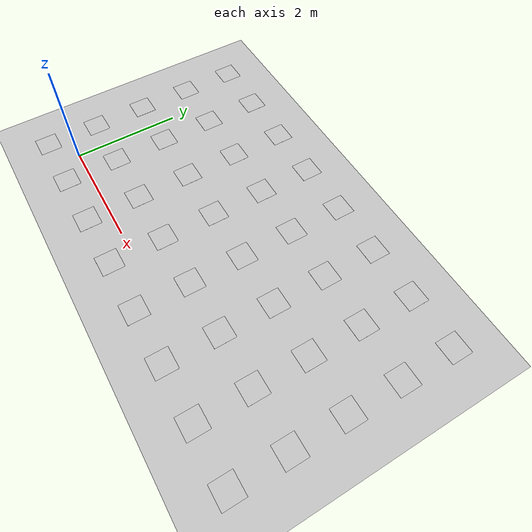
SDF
<sdf version="1.7">
 <world name="default">
  <light name="sun" type="directional">
   <pose>0 0 10 0 -0 0</pose>
   <diffuse>0.8 0.8 0.8 1</diffuse>
   <specular>0.2 0.2 0.2 1</specular>
   <attenuation>
    <range>1000</range>
    <constant>0.9</constant>
    <linear>0.01</linear>
    <quadratic>0.001</quadratic>
   </attenuation>
   <direction>-0.5 0.1 -0.9</direction>
   <spot><inner_angle>0</inner_angle><outer_angle>0</outer_angle><falloff>0</falloff></spot>
  </light>
  <model name="parquet_plane">
   <static>1</static>
   <link name="link">
    <collision name="collision"><geometry><box><size>200 200 0.02</size></box></geometry></collision>
    <visual name="visual">
     <cast_shadows>0</cast_shadows>
     <geometry><box><size>200 200 0.02</size></box></geometry>
     <material>
      <script>
       <uri>model://parquet_plane/materials/scripts</uri>
       <uri>model://parquet_plane/materials/textures</uri>
       <name>parquet</name>
      </script>
     </material>
    </visual>
   </link>
   <pose>0 0 -0.01 0 -0 0</pose>
  </model>
  <scene>
   <ambient>0.8 0.8 0.8 1</ambient>
   <background>0.8 0.9 1 1</background>
   <shadows>0</shadows>
   <grid>0</grid>
   <origin_visual>0</origin_visual>
  </scene>
  <physics name="default_physics" default="0" type="ode">
   <ode>
    <solver>
     <type>quick</type>
     <iters>10</iters>
     <sor>1.3</sor>
     <use_dynamic_moi_rescaling>0</use_dynamic_moi_rescaling>
    </solver>
    <constraints>
     <cfm>0</cfm>
     <erp>0.2</erp>
     <contact_max_correcting_vel>100</contact_max_correcting_vel>
     <contact_surface_layer>0.001</contact_surface_layer>
    </constraints>
   </ode>
   <max_step_size>0.004</max_step_size>
   <real_time_factor>1</real_time_factor>
   <real_time_update_rate>250</real_time_update_rate>
  </physics>
  <gravity>0 0 -9.8066</gravity>
  <magnetic_field>6e-06 2.3e-05 -4.2e-05</magnetic_field>
  <atmosphere type="adiabatic"/>
  <spherical_coordinates>
   <surface_model>EARTH_WGS84</surface_model>
   <latitude_deg>0</latitude_deg>
   <longitude_deg>0</longitude_deg>
   <elevation>0</elevation>
   <heading_deg>0</heading_deg>
  </spherical_coordinates>
  <model name="aruco_2_40">
   <static>1</static>
   <link name="aruco_2_40_link">
    <visual name="visual_marker_2_129">
     <pose>0 0 0 0 -0 1.5708</pose>
     <cast_shadows>0</cast_shadows>
     <geometry><box><size>0.4 0.4 0.001</size></box></geometry>
     <material>
      <script>
       <uri>model://aruco_test_map_init_txt/materials/scripts</uri>
       <uri>model://aruco_test_map_init_txt/materials/textures</uri>
       <name>aruco/marker_2_129</name>
      </script>
     </material>
    </visual>
    <visual name="visual_marker_2_124">
     <pose>1 0 0 0 -0 1.5708</pose>
     <cast_shadows>0</cast_shadows>
     <geometry><box><size>0.4 0.4 0.001</size></box></geometry>
     <material>
      <script>
       <uri>model://aruco_test_map_init_txt/materials/scripts</uri>
       <uri>model://aruco_test_map_init_txt/materials/textures</uri>
       <name>aruco/marker_2_124</name>
      </script>
     </material>
    </visual>
    <visual name="visual_marker_2_119">
     <pose>2 0 0 0 -0 1.5708</pose>
     <cast_shadows>0</cast_shadows>
     <geometry><box><size>0.4 0.4 0.001</size></box></geometry>
     <material>
      <script>
       <uri>model://aruco_test_map_init_txt/materials/scripts</uri>
       <uri>model://aruco_test_map_init_txt/materials/textures</uri>
       <name>aruco/marker_2_119</name>
      </script>
     </material>
    </visual>
    <visual name="visual_marker_2_137">
     <pose>3 0 0 0 -0 1.5708</pose>
     <cast_shadows>0</cast_shadows>
     <geometry><box><size>0.4 0.4 0.001</size></box></geometry>
     <material>
      <script>
       <uri>model://aruco_test_map_init_txt/materials/scripts</uri>
       <uri>model://aruco_test_map_init_txt/materials/textures</uri>
       <name>aruco/marker_2_137</name>
      </script>
     </material>
    </visual>
    <visual name="visual_marker_2_147">
     <pose>4 0 0 0 -0 1.5708</pose>
     <cast_shadows>0</cast_shadows>
     <geometry><box><size>0.4 0.4 0.001</size></box></geometry>
     <material>
      <script>
       <uri>model://aruco_test_map_init_txt/materials/scripts</uri>
       <uri>model://aruco_test_map_init_txt/materials/textures</uri>
       <name>aruco/marker_2_147</name>
      </script>
     </material>
    </visual>
    <visual name="visual_marker_2_120">
     <pose>5 0 0 0 -0 1.5708</pose>
     <cast_shadows>0</cast_shadows>
     <geometry><box><size>0.4 0.4 0.001</size></box></geometry>
     <material>
      <script>
       <uri>model://aruco_test_map_init_txt/materials/scripts</uri>
       <uri>model://aruco_test_map_init_txt/materials/textures</uri>
       <name>aruco/marker_2_120</name>
      </script>
     </material>
    </visual>
    <visual name="visual_marker_2_126">
     <pose>6 0 0 0 -0 1.5708</pose>
     <cast_shadows>0</cast_shadows>
     <geometry><box><size>0.4 0.4 0.001</size></box></geometry>
     <material>
      <script>
       <uri>model://aruco_test_map_init_txt/materials/scripts</uri>
       <uri>model://aruco_test_map_init_txt/materials/textures</uri>
       <name>aruco/marker_2_126</name>
      </script>
     </material>
    </visual>
    <visual name="visual_marker_2_138">
     <pose>7 0 0 0 -0 1.5708</pose>
     <cast_shadows>0</cast_shadows>
     <geometry><box><size>0.4 0.4 0.001</size></box></geometry>
     <material>
      <script>
       <uri>model://aruco_test_map_init_txt/materials/scripts</uri>
       <uri>model://aruco_test_map_init_txt/materials/textures</uri>
       <name>aruco/marker_2_138</name>
      </script>
     </material>
    </visual>
    <visual name="visual_marker_2_142">
     <pose>0 1 0 0 -0 1.5708</pose>
     <cast_shadows>0</cast_shadows>
     <geometry><box><size>0.4 0.4 0.001</size></box></geometry>
     <material>
      <script>
       <uri>model://aruco_test_map_init_txt/materials/scripts</uri>
       <uri>model://aruco_test_map_init_txt/materials/textures</uri>
       <name>aruco/marker_2_142</name>
      </script>
     </material>
    </visual>
    <visual name="visual_marker_2_125">
     <pose>1 1 0 0 -0 1.5708</pose>
     <cast_shadows>0</cast_shadows>
     <geometry><box><size>0.4 0.4 0.001</size></box></geometry>
     <material>
      <script>
       <uri>model://aruco_test_map_init_txt/materials/scripts</uri>
       <uri>model://aruco_test_map_init_txt/materials/textures</uri>
       <name>aruco/marker_2_125</name>
      </script>
     </material>
    </visual>
    <visual name="visual_marker_2_150">
     <pose>2 1 0 0 -0 1.5708</pose>
     <cast_shadows>0</cast_shadows>
     <geometry><box><size>0.4 0.4 0.001</size></box></geometry>
     <material>
      <script>
       <uri>model://aruco_test_map_init_txt/materials/scripts</uri>
       <uri>model://aruco_test_map_init_txt/materials/textures</uri>
       <name>aruco/marker_2_150</name>
      </script>
     </material>
    </visual>
    <visual name="visual_marker_2_127">
     <pose>3 1 0 0 -0 1.5708</pose>
     <cast_shadows>0</cast_shadows>
     <geometry><box><size>0.4 0.4 0.001</size></box></geometry>
     <material>
      <script>
       <uri>model://aruco_test_map_init_txt/materials/scripts</uri>
       <uri>model://aruco_test_map_init_txt/materials/textures</uri>
       <name>aruco/marker_2_127</name>
      </script>
     </material>
    </visual>
    <visual name="visual_marker_2_156">
     <pose>4 1 0 0 -0 1.5708</pose>
     <cast_shadows>0</cast_shadows>
     <geometry><box><size>0.4 0.4 0.001</size></box></geometry>
     <material>
      <script>
       <uri>model://aruco_test_map_init_txt/materials/scripts</uri>
       <uri>model://aruco_test_map_init_txt/materials/textures</uri>
       <name>aruco/marker_2_156</name>
      </script>
     </material>
    </visual>
    <visual name="visual_marker_2_159">
     <pose>5 1 0 0 -0 1.5708</pose>
     <cast_shadows>0</cast_shadows>
     <geometry><box><size>0.4 0.4 0.001</size></box></geometry>
     <material>
      <script>
       <uri>model://aruco_test_map_init_txt/materials/scripts</uri>
       <uri>model://aruco_test_map_init_txt/materials/textures</uri>
       <name>aruco/marker_2_159</name>
      </script>
     </material>
    </visual>
    <visual name="visual_marker_2_130">
     <pose>6 1 0 0 -0 1.5708</pose>
     <cast_shadows>0</cast_shadows>
     <geometry><box><size>0.4 0.4 0.001</size></box></geometry>
     <material>
      <script>
       <uri>model://aruco_test_map_init_txt/materials/scripts</uri>
       <uri>model://aruco_test_map_init_txt/materials/textures</uri>
       <name>aruco/marker_2_130</name>
      </script>
     </material>
    </visual>
    <visual name="visual_marker_2_122">
     <pose>7 1 0 0 -0 1.5708</pose>
     <cast_shadows>0</cast_shadows>
     <geometry><box><size>0.4 0.4 0.001</size></box></geometry>
     <material>
      <script>
       <uri>model://aruco_test_map_init_txt/materials/scripts</uri>
       <uri>model://aruco_test_map_init_txt/materials/textures</uri>
       <name>aruco/marker_2_122</name>
      </script>
     </material>
    </visual>
    <visual name="visual_marker_2_145">
     <pose>0 2 0 0 -0 1.5708</pose>
     <cast_shadows>0</cast_shadows>
     <geometry><box><size>0.4 0.4 0.001</size></box></geometry>
     <material>
      <script>
       <uri>model://aruco_test_map_init_txt/materials/scripts</uri>
       <uri>model://aruco_test_map_init_txt/materials/textures</uri>
       <name>aruco/marker_2_145</name>
      </script>
     </material>
    </visual>
    <visual name="visual_marker_2_109">
     <pose>1 2 0 0 -0 1.5708</pose>
     <cast_shadows>0</cast_shadows>
     <geometry><box><size>0.4 0.4 0.001</size></box></geometry>
     <material>
      <script>
       <uri>model://aruco_test_map_init_txt/materials/scripts</uri>
       <uri>model://aruco_test_map_init_txt/materials/textures</uri>
       <name>aruco/marker_2_109</name>
      </script>
     </material>
    </visual>
    <visual name="visual_marker_2_157">
     <pose>2 2 0 0 -0 1.5708</pose>
     <cast_shadows>0</cast_shadows>
     <geometry><box><size>0.4 0.4 0.001</size></box></geometry>
     <material>
      <script>
       <uri>model://aruco_test_map_init_txt/materials/scripts</uri>
       <uri>model://aruco_test_map_init_txt/materials/textures</uri>
       <name>aruco/marker_2_157</name>
      </script>
     </material>
    </visual>
    <visual name="visual_marker_2_151">
     <pose>3 2 0 0 -0 1.5708</pose>
     <cast_shadows>0</cast_shadows>
     <geometry><box><size>0.4 0.4 0.001</size></box></geometry>
     <material>
      <script>
       <uri>model://aruco_test_map_init_txt/materials/scripts</uri>
       <uri>model://aruco_test_map_init_txt/materials/textures</uri>
       <name>aruco/marker_2_151</name>
      </script>
     </material>
    </visual>
    <visual name="visual_marker_2_121">
     <pose>4 2 0 0 -0 1.5708</pose>
     <cast_shadows>0</cast_shadows>
     <geometry><box><size>0.4 0.4 0.001</size></box></geometry>
     <material>
      <script>
       <uri>model://aruco_test_map_init_txt/materials/scripts</uri>
       <uri>model://aruco_test_map_init_txt/materials/textures</uri>
       <name>aruco/marker_2_121</name>
      </script>
     </material>
    </visual>
    <visual name="visual_marker_2_101">
     <pose>5 2 0 0 -0 1.5708</pose>
     <cast_shadows>0</cast_shadows>
     <geometry><box><size>0.4 0.4 0.001</size></box></geometry>
     <material>
      <script>
       <uri>model://aruco_test_map_init_txt/materials/scripts</uri>
       <uri>model://aruco_test_map_init_txt/materials/textures</uri>
       <name>aruco/marker_2_101</name>
      </script>
     </material>
    </visual>
    <visual name="visual_marker_2_128">
     <pose>6 2 0 0 -0 1.5708</pose>
     <cast_shadows>0</cast_shadows>
     <geometry><box><size>0.4 0.4 0.001</size></box></geometry>
     <material>
      <script>
       <uri>model://aruco_test_map_init_txt/materials/scripts</uri>
       <uri>model://aruco_test_map_init_txt/materials/textures</uri>
       <name>aruco/marker_2_128</name>
      </script>
     </material>
    </visual>
    <visual name="visual_marker_2_132">
     <pose>7 2 0 0 -0 1.5708</pose>
     <cast_shadows>0</cast_shadows>
     <geometry><box><size>0.4 0.4 0.001</size></box></geometry>
     <material>
      <script>
       <uri>model://aruco_test_map_init_txt/materials/scripts</uri>
       <uri>model://aruco_test_map_init_txt/materials/textures</uri>
       <name>aruco/marker_2_132</name>
      </script>
     </material>
    </visual>
    <visual name="visual_marker_2_143">
     <pose>0 3 0 0 -0 1.5708</pose>
     <cast_shadows>0</cast_shadows>
     <geometry><box><size>0.4 0.4 0.001</size></box></geometry>
     <material>
      <script>
       <uri>model://aruco_test_map_init_txt/materials/scripts</uri>
       <uri>model://aruco_test_map_init_txt/materials/textures</uri>
       <name>aruco/marker_2_143</name>
      </script>
     </material>
    </visual>
    <visual name="visual_marker_2_144">
     <pose>1 3 0 0 -0 1.5708</pose>
     <cast_shadows>0</cast_shadows>
     <geometry><box><size>0.4 0.4 0.001</size></box></geometry>
     <material>
      <script>
       <uri>model://aruco_test_map_init_txt/materials/scripts</uri>
       <uri>model://aruco_test_map_init_txt/materials/textures</uri>
       <name>aruco/marker_2_144</name>
      </script>
     </material>
    </visual>
    <visual name="visual_marker_2_139">
     <pose>2 3 0 0 -0 1.5708</pose>
     <cast_shadows>0</cast_shadows>
     <geometry><box><size>0.4 0.4 0.001</size></box></geometry>
     <material>
      <script>
       <uri>model://aruco_test_map_init_txt/materials/scripts</uri>
       <uri>model://aruco_test_map_init_txt/materials/textures</uri>
       <name>aruco/marker_2_139</name>
      </script>
     </material>
    </visual>
    <visual name="visual_marker_2_148">
     <pose>3 3 0 0 -0 1.5708</pose>
     <cast_shadows>0</cast_shadows>
     <geometry><box><size>0.4 0.4 0.001</size></box></geometry>
     <material>
      <script>
       <uri>model://aruco_test_map_init_txt/materials/scripts</uri>
       <uri>model://aruco_test_map_init_txt/materials/textures</uri>
       <name>aruco/marker_2_148</name>
      </script>
     </material>
    </visual>
    <visual name="visual_marker_2_133">
     <pose>4 3 0 0 -0 1.5708</pose>
     <cast_shadows>0</cast_shadows>
     <geometry><box><size>0.4 0.4 0.001</size></box></geometry>
     <material>
      <script>
       <uri>model://aruco_test_map_init_txt/materials/scripts</uri>
       <uri>model://aruco_test_map_init_txt/materials/textures</uri>
       <name>aruco/marker_2_133</name>
      </script>
     </material>
    </visual>
    <visual name="visual_marker_2_153">
     <pose>5 3 0 0 -0 1.5708</pose>
     <cast_shadows>0</cast_shadows>
     <geometry><box><size>0.4 0.4 0.001</size></box></geometry>
     <material>
      <script>
       <uri>model://aruco_test_map_init_txt/materials/scripts</uri>
       <uri>model://aruco_test_map_init_txt/materials/textures</uri>
       <name>aruco/marker_2_153</name>
      </script>
     </material>
    </visual>
    <visual name="visual_marker_2_158">
     <pose>6 3 0 0 -0 1.5708</pose>
     <cast_shadows>0</cast_shadows>
     <geometry><box><size>0.4 0.4 0.001</size></box></geometry>
     <material>
      <script>
       <uri>model://aruco_test_map_init_txt/materials/scripts</uri>
       <uri>model://aruco_test_map_init_txt/materials/textures</uri>
       <name>aruco/marker_2_158</name>
      </script>
     </material>
    </visual>
    <visual name="visual_marker_2_116">
     <pose>7 3 0 0 -0 1.5708</pose>
     <cast_shadows>0</cast_shadows>
     <geometry><box><size>0.4 0.4 0.001</size></box></geometry>
     <material>
      <script>
       <uri>model://aruco_test_map_init_txt/materials/scripts</uri>
       <uri>model://aruco_test_map_init_txt/materials/textures</uri>
       <name>aruco/marker_2_116</name>
      </script>
     </material>
    </visual>
    <visual name="visual_marker_2_134">
     <pose>0 4 0 0 -0 1.5708</pose>
     <cast_shadows>0</cast_shadows>
     <geometry><box><size>0.4 0.4 0.001</size></box></geometry>
     <material>
      <script>
       <uri>model://aruco_test_map_init_txt/materials/scripts</uri>
       <uri>model://aruco_test_map_init_txt/materials/textures</uri>
       <name>aruco/marker_2_134</name>
      </script>
     </material>
    </visual>
    <visual name="visual_marker_2_131">
     <pose>1 4 0 0 -0 1.5708</pose>
     <cast_shadows>0</cast_shadows>
     <geometry><box><size>0.4 0.4 0.001</size></box></geometry>
     <material>
      <script>
       <uri>model://aruco_test_map_init_txt/materials/scripts</uri>
       <uri>model://aruco_test_map_init_txt/materials/textures</uri>
       <name>aruco/marker_2_131</name>
      </script>
     </material>
    </visual>
    <visual name="visual_marker_2_160">
     <pose>2 4 0 0 -0 1.5708</pose>
     <cast_shadows>0</cast_shadows>
     <geometry><box><size>0.4 0.4 0.001</size></box></geometry>
     <material>
      <script>
       <uri>model://aruco_test_map_init_txt/materials/scripts</uri>
       <uri>model://aruco_test_map_init_txt/materials/textures</uri>
       <name>aruco/marker_2_160</name>
      </script>
     </material>
    </visual>
    <visual name="visual_marker_2_108">
     <pose>3 4 0 0 -0 1.5708</pose>
     <cast_shadows>0</cast_shadows>
     <geometry><box><size>0.4 0.4 0.001</size></box></geometry>
     <material>
      <script>
       <uri>model://aruco_test_map_init_txt/materials/scripts</uri>
       <uri>model://aruco_test_map_init_txt/materials/textures</uri>
       <name>aruco/marker_2_108</name>
      </script>
     </material>
    </visual>
    <visual name="visual_marker_2_115">
     <pose>4 4 0 0 -0 1.5708</pose>
     <cast_shadows>0</cast_shadows>
     <geometry><box><size>0.4 0.4 0.001</size></box></geometry>
     <material>
      <script>
       <uri>model://aruco_test_map_init_txt/materials/scripts</uri>
       <uri>model://aruco_test_map_init_txt/materials/textures</uri>
       <name>aruco/marker_2_115</name>
      </script>
     </material>
    </visual>
    <visual name="visual_marker_2_112">
     <pose>5 4 0 0 -0 1.5708</pose>
     <cast_shadows>0</cast_shadows>
     <geometry><box><size>0.4 0.4 0.001</size></box></geometry>
     <material>
      <script>
       <uri>model://aruco_test_map_init_txt/materials/scripts</uri>
       <uri>model://aruco_test_map_init_txt/materials/textures</uri>
       <name>aruco/marker_2_112</name>
      </script>
     </material>
    </visual>
    <visual name="visual_marker_2_123">
     <pose>6 4 0 0 -0 1.5708</pose>
     <cast_shadows>0</cast_shadows>
     <geometry><box><size>0.4 0.4 0.001</size></box></geometry>
     <material>
      <script>
       <uri>model://aruco_test_map_init_txt/materials/scripts</uri>
       <uri>model://aruco_test_map_init_txt/materials/textures</uri>
       <name>aruco/marker_2_123</name>
      </script>
     </material>
    </visual>
    <visual name="visual_marker_2_110">
     <pose>7 4 0 0 -0 1.5708</pose>
     <cast_shadows>0</cast_shadows>
     <geometry><box><size>0.4 0.4 0.001</size></box></geometry>
     <material>
      <script>
       <uri>model://aruco_test_map_init_txt/materials/scripts</uri>
       <uri>model://aruco_test_map_init_txt/materials/textures</uri>
       <name>aruco/marker_2_110</name>
      </script>
     </material>
    </visual>
   </link>
   <pose>-0.571921 -0.40721 0 0 -0 0</pose>
  </model>
 </world>
</sdf>
